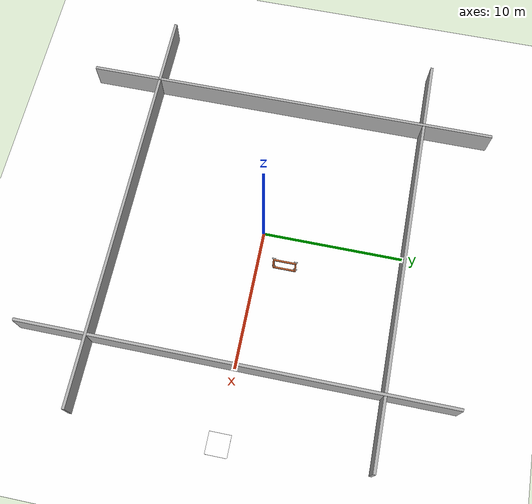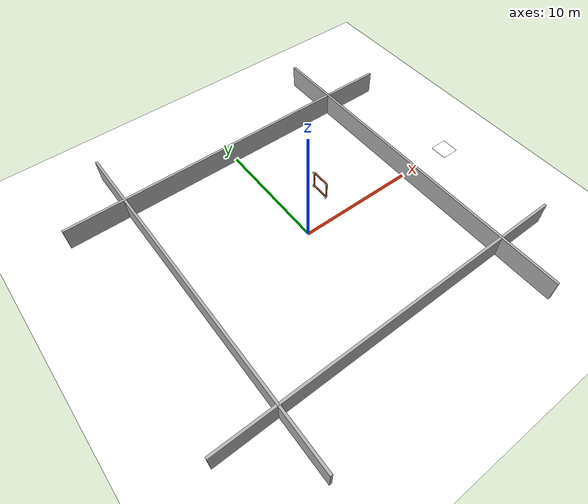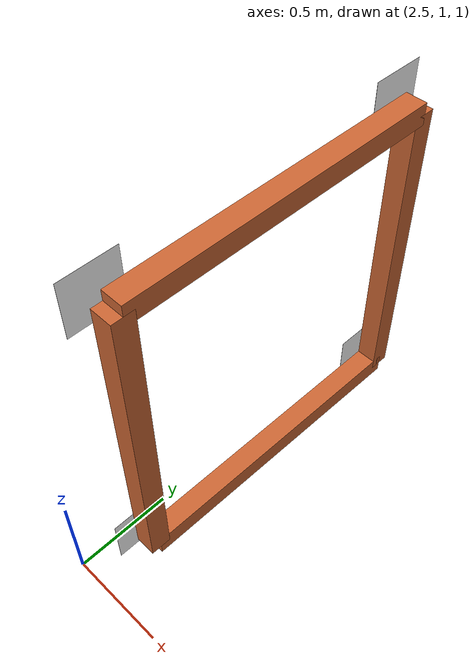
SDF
<sdf version="1.9">
 <world name="map">
  <physics name="1ms" type="ignored">
   <max_step_size>0.001</max_step_size>
   <real_time_factor>1.0</real_time_factor>
  </physics>
  <plugin filename="gz-sim-physics-system" name="gz::sim::systems::Physics"/>
  <plugin filename="gz-sim-user-commands-system" name="gz::sim::systems::UserCommands"/>
  <plugin filename="gz-sim-scene-broadcaster-system" name="gz::sim::systems::SceneBroadcaster"/>
  <plugin filename="gz-sim-sensors-system" name="gz::sim::systems::Sensors">
   <render_engine>ogre2</render_engine>
  </plugin>
  <plugin filename="gz-sim-air-pressure-system" name="gz::sim::systems::AirPressure"/>
  <plugin filename="gz-sim-imu-system" name="gz::sim::systems::Imu"/>
  <plugin filename="gz-sim-magnetometer-system" name="gz::sim::systems::Magnetometer"/>
  <plugin filename="gz-sim-navsat-system" name="gz::sim::systems::NavSat"/>
  <light type="directional" name="sun">
   <pose>0 0 500 0 0 0</pose>
   <direction>0.3 0.1 -1.0</direction>
   <diffuse>0.95 0.92 0.85 1</diffuse>
   <specular>0.4 0.4 0.35 1</specular>
  </light>
  <light type="directional" name="ambient_fill">
   <cast_shadows>false</cast_shadows>
   <pose>0 0 100 0 0 0</pose>
   <direction>-0.2 -0.1 -1.0</direction>
   <diffuse>0.35 0.40 0.48 1</diffuse>
   <specular>0.05 0.05 0.05 1</specular>
  </light>
  <light type="point" name="arch_light">
   <cast_shadows>false</cast_shadows>
   <pose>0 2 3 0 0 0</pose>
   <diffuse>0.6 0.6 0.6 1</diffuse>
   <specular>0.3 0.3 0.3 1</specular>
   <attenuation>
    <range>10</range>
    <constant>0.5</constant>
    <linear>0.02</linear>
    <quadratic>0.002</quadratic>
   </attenuation>
  </light>
  <light type="point" name="lower_marker_light">
   <cast_shadows>false</cast_shadows>
   <pose>0 2 1.5 0 0 0</pose>
   <diffuse>0.8 0.8 0.8 1</diffuse>
   <specular>0.3 0.3 0.3 1</specular>
   <attenuation>
    <range>8</range>
    <constant>0.4</constant>
    <linear>0.01</linear>
    <quadratic>0.001</quadratic>
   </attenuation>
  </light>
  <light type="point" name="hangar_light_1">
   <cast_shadows>false</cast_shadows>
   <pose>8 -60 18 0 0 0</pose>
   <diffuse>1.0 0.95 0.85 1</diffuse>
   <specular>0.5 0.5 0.4 1</specular>
   <attenuation>
    <range>40</range>
    <constant>0.3</constant>
    <linear>0.02</linear>
    <quadratic>0.005</quadratic>
   </attenuation>
  </light>
  <light type="point" name="hangar_light_2">
   <cast_shadows>false</cast_shadows>
   <pose>-8 -60 18 0 0 0</pose>
   <diffuse>1.0 0.95 0.85 1</diffuse>
   <specular>0.5 0.5 0.4 1</specular>
   <attenuation>
    <range>40</range>
    <constant>0.3</constant>
    <linear>0.02</linear>
    <quadratic>0.005</quadratic>
   </attenuation>
  </light>
  <light type="point" name="hangar_light_center">
   <cast_shadows>false</cast_shadows>
   <pose>0 -60 20 0 0 0</pose>
   <diffuse>1.0 0.98 0.92 1</diffuse>
   <specular>0.6 0.6 0.5 1</specular>
   <attenuation>
    <range>50</range>
    <constant>0.2</constant>
    <linear>0.015</linear>
    <quadratic>0.003</quadratic>
   </attenuation>
  </light>
  <spherical_coordinates>
   <latitude_deg>-35.3632621</latitude_deg>
   <longitude_deg>149.1652374</longitude_deg>
   <elevation>10.0</elevation>
   <heading_deg>0</heading_deg>
   <surface_model>EARTH_WGS84</surface_model>
  </spherical_coordinates>
  <include><uri>model://grass_ground</uri><name>ground_plane</name></include>
  <model name="wall_front">
   <static>true</static>
   <pose>10 0 1 0 0 0</pose>
   <link name="link">
    <collision name="collision"><geometry><box><size>0.2 30 2</size></box></geometry></collision>
    <visual name="visual">
     <geometry><box><size>0.2 30 2</size></box></geometry>
     <material>
      <ambient>0.7 0.7 0.7 1</ambient>
      <diffuse>0.7 0.7 0.7 1</diffuse>
      <specular>0.1 0.1 0.1 1</specular>
     </material>
    </visual>
   </link>
  </model>
  <model name="wall_back">
   <static>true</static>
   <pose>-10 0 1 0 0 0</pose>
   <link name="link">
    <collision name="collision"><geometry><box><size>0.2 30 2</size></box></geometry></collision>
    <visual name="visual">
     <geometry><box><size>0.2 30 2</size></box></geometry>
     <material>
      <ambient>0.7 0.7 0.7 1</ambient>
      <diffuse>0.7 0.7 0.7 1</diffuse>
      <specular>0.1 0.1 0.1 1</specular>
     </material>
    </visual>
   </link>
  </model>
  <model name="wall_left">
   <static>true</static>
   <pose>0 10 1 0 0 0</pose>
   <link name="link">
    <collision name="collision"><geometry><box><size>30 0.2 2</size></box></geometry></collision>
    <visual name="visual">
     <geometry><box><size>30 0.2 2</size></box></geometry>
     <material>
      <ambient>0.7 0.7 0.7 1</ambient>
      <diffuse>0.7 0.7 0.7 1</diffuse>
      <specular>0.1 0.1 0.1 1</specular>
     </material>
    </visual>
   </link>
  </model>
  <model name="wall_right">
   <static>true</static>
   <pose>0 -10 1 0 0 0</pose>
   <link name="link">
    <collision name="collision"><geometry><box><size>30 0.2 2</size></box></geometry></collision>
    <visual name="visual">
     <geometry><box><size>30 0.2 2</size></box></geometry>
     <material>
      <ambient>0.7 0.7 0.7 1</ambient>
      <diffuse>0.7 0.7 0.7 1</diffuse>
      <specular>0.1 0.1 0.1 1</specular>
     </material>
    </visual>
   </link>
  </model>
  <model name="floating_square_front">
   <static>true</static>
   <pose>2.75 2.75 2 0 0 1.5707963267948966</pose>
   <link name="link">
    <collision name="collision"><geometry><box><size>0.1 0.1 1.5</size></box></geometry></collision>
    <visual name="visual">
     <geometry><box><size>0.1 0.1 1.5</size></box></geometry>
     <material>
      <ambient>0.8 0.4 0.2 1</ambient>
      <diffuse>0.8 0.4 0.2 1</diffuse>
      <specular>0.2 0.2 0.2 1</specular>
     </material>
    </visual>
   </link>
  </model>
  <model name="floating_square_back">
   <static>true</static>
   <pose>2.75 1.25 2 0 0 1.5707963267948966</pose>
   <link name="link">
    <collision name="collision"><geometry><box><size>0.1 0.1 1.5</size></box></geometry></collision>
    <visual name="visual">
     <geometry><box><size>0.1 0.1 1.5</size></box></geometry>
     <material>
      <ambient>0.8 0.4 0.2 1</ambient>
      <diffuse>0.8 0.4 0.2 1</diffuse>
      <specular>0.2 0.2 0.2 1</specular>
     </material>
    </visual>
   </link>
  </model>
  <model name="floating_square_left">
   <static>true</static>
   <pose>2.75 2 2.75 0 1.57 1.5707963267948966</pose>
   <link name="link">
    <collision name="collision"><geometry><box><size>0.1 0.1 1.5</size></box></geometry></collision>
    <visual name="visual">
     <geometry><box><size>0.1 0.1 1.5</size></box></geometry>
     <material>
      <ambient>0.8 0.4 0.2 1</ambient>
      <diffuse>0.8 0.4 0.2 1</diffuse>
      <specular>0.2 0.2 0.2 1</specular>
     </material>
    </visual>
   </link>
  </model>
  <model name="floating_square_right">
   <static>true</static>
   <pose>2.75 2 1.25 0 1.57 1.5707963267948966</pose>
   <link name="link">
    <collision name="collision"><geometry><box><size>0.1 0.1 1.5</size></box></geometry></collision>
    <visual name="visual">
     <geometry><box><size>0.1 0.1 1.5</size></box></geometry>
     <material>
      <ambient>0.8 0.4 0.2 1</ambient>
      <diffuse>0.8 0.4 0.2 1</diffuse>
      <specular>0.2 0.2 0.2 1</specular>
     </material>
    </visual>
   </link>
  </model>
  <include>
   <uri>model://aruco_marker_0</uri>
   <name>aruco_marker_0</name>
   <pose>2.65 2.75 1.25 0 1.57079 3.14159</pose>
  </include>
  <include>
   <uri>model://aruco_marker_1</uri>
   <name>aruco_marker_1</name>
   <pose>2.65 1.25 1.25 0 1.57079 3.14159</pose>
  </include>
  <include>
   <uri>model://aruco_marker_2</uri>
   <name>aruco_marker_2</name>
   <pose>2.65 2.75 2.75 0 1.57079 3.14159</pose>
  </include>
  <include>
   <uri>model://aruco_marker_3</uri>
   <name>aruco_marker_3</name>
   <pose>2.65 1.25 2.75 0 1.57079 3.14159</pose>
  </include>
  <include><uri>model://h_base</uri><name>helipad</name><pose>15 0 0.005 0 0 0</pose></include>
 </world>
</sdf>

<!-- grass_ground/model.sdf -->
<sdf version="1.9">
  <model name="grass_ground">
    <static>true</static>
    <link name="link">
      <collision name="collision">
        <geometry>
          <plane>
            <normal>0 0 1</normal>
            <size>500 500</size>
          </plane>
        </geometry>
      </collision>
      <visual name="visual">
        <geometry>
          <plane>
            <normal>0 0 1</normal>
            <size>500 500</size>
          </plane>
        </geometry>
        <material>
          <ambient>1 1 1 1</ambient>
          <diffuse>1 1 1 1</diffuse>
          <specular>0.1 0.1 0.1 1</specular>
          <pbr>
            <metal>
              <!-- Repetição do tile: 500m / 4m por tile = ~125 repetições -->
              <albedo_map>model://grass_ground/materials/textures/ground_terrain.png</albedo_map>
            </metal>
          </pbr>
        </material>
      </visual>
    </link>
  </model>
</sdf>

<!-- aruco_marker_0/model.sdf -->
<sdf version="1.9">
  <model name="aruco_marker_0">
    <static>true</static>
    <link name="marker_link">
      <pose>0 0 0 0 0 0</pose>

      <collision name="collision">
        <geometry>
          <box>
            <size>0.25 0.25 0.001</size>
          </box>
        </geometry>
      </collision>

      <visual name="visual">
        <geometry>
          <box>
            <size>0.25 0.25 0.001</size>
          </box>
        </geometry>
        <material>
          <ambient>1 1 1 1</ambient>
          <diffuse>1 1 1 1</diffuse>
          <specular>0.05 0.05 0.05 1</specular>
          <emissive>0.15 0.15 0.15 1</emissive>
          <pbr>
            <metal>
              <albedo_map>model://aruco_marker_0/materials/textures/marker_0.png</albedo_map>
            </metal>
          </pbr>
        </material>
      </visual>
    </link>
  </model>
</sdf>

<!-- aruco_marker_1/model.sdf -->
<sdf version="1.9">
  <model name="aruco_marker_1">
    <static>true</static>
    <link name="marker_link">
      <pose>0 0 0 0 0 0</pose>

      <collision name="collision">
        <geometry>
          <box>
            <size>0.25 0.25 0.001</size>
          </box>
        </geometry>
      </collision>

      <visual name="visual">
        <geometry>
          <box>
            <size>0.25 0.25 0.001</size>
          </box>
        </geometry>
        <material>
          <ambient>1 1 1 1</ambient>
          <diffuse>1 1 1 1</diffuse>
          <specular>0.05 0.05 0.05 1</specular>
          <emissive>0.15 0.15 0.15 1</emissive>
          <pbr>
            <metal>
              <albedo_map>model://aruco_marker_1/materials/textures/marker_1.png</albedo_map>
            </metal>
          </pbr>
        </material>
      </visual>
    </link>
  </model>
</sdf>

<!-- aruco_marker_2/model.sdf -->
<sdf version="1.9">
  <model name="aruco_marker_2">
    <static>true</static>
    <link name="marker_link">
      <pose>0 0 0 0 0 0</pose>

      <collision name="collision">
        <geometry>
          <box>
            <size>0.25 0.25 0.001</size>
          </box>
        </geometry>
      </collision>

      <visual name="visual">
        <geometry>
          <box>
            <size>0.25 0.25 0.001</size>
          </box>
        </geometry>
        <material>
          <ambient>1 1 1 1</ambient>
          <diffuse>1 1 1 1</diffuse>
          <specular>0.05 0.05 0.05 1</specular>
          <emissive>0.15 0.15 0.15 1</emissive>
          <pbr>
            <metal>
              <albedo_map>model://aruco_marker_2/materials/textures/marker_2.png</albedo_map>
            </metal>
          </pbr>
        </material>
      </visual>
    </link>
  </model>
</sdf>

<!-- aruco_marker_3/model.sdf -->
<sdf version="1.9">
  <model name="aruco_marker_3">
    <static>true</static>
    <link name="marker_link">
      <pose>0 0 0 0 0 0</pose>

      <collision name="collision">
        <geometry>
          <box>
            <size>0.25 0.25 0.001</size>
          </box>
        </geometry>
      </collision>

      <visual name="visual">
        <geometry>
          <box>
            <size>0.25 0.25 0.001</size>
          </box>
        </geometry>
        <material>
          <ambient>1 1 1 1</ambient>
          <diffuse>1 1 1 1</diffuse>
          <specular>0.05 0.05 0.05 1</specular>
          <emissive>0.15 0.15 0.15 1</emissive>
          <pbr>
            <metal>
              <albedo_map>model://aruco_marker_3/materials/textures/marker_3.png</albedo_map>
            </metal>
          </pbr>
        </material>
      </visual>
    </link>
  </model>
</sdf>

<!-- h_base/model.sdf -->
<sdf version="1.9">
  <model name="h_base">
    <static>true</static>

    <link name="base_link">
      <!-- Main helipad surface with texture -->
      <collision name="base_collision">
        <geometry>
          <box>
            <size>1.5 1.5 0.01</size>
          </box>
        </geometry>
      </collision>
      <visual name="base_visual">
        <pose>0 0 0.005 0 0 0</pose>
        <geometry>
          <box>
            <size>1.5 1.5 0.01</size>
          </box>
        </geometry>
        <material>
          <ambient>1.0 1.0 1.0 1</ambient>
          <diffuse>1.0 1.0 1.0 1</diffuse>
          <specular>0.1 0.1 0.1 1</specular>
          <pbr>
            <metal>
              <albedo_map>baseH.jpeg</albedo_map>
            </metal>
          </pbr>
        </material>
      </visual>
    </link>
  </model>
</sdf>
